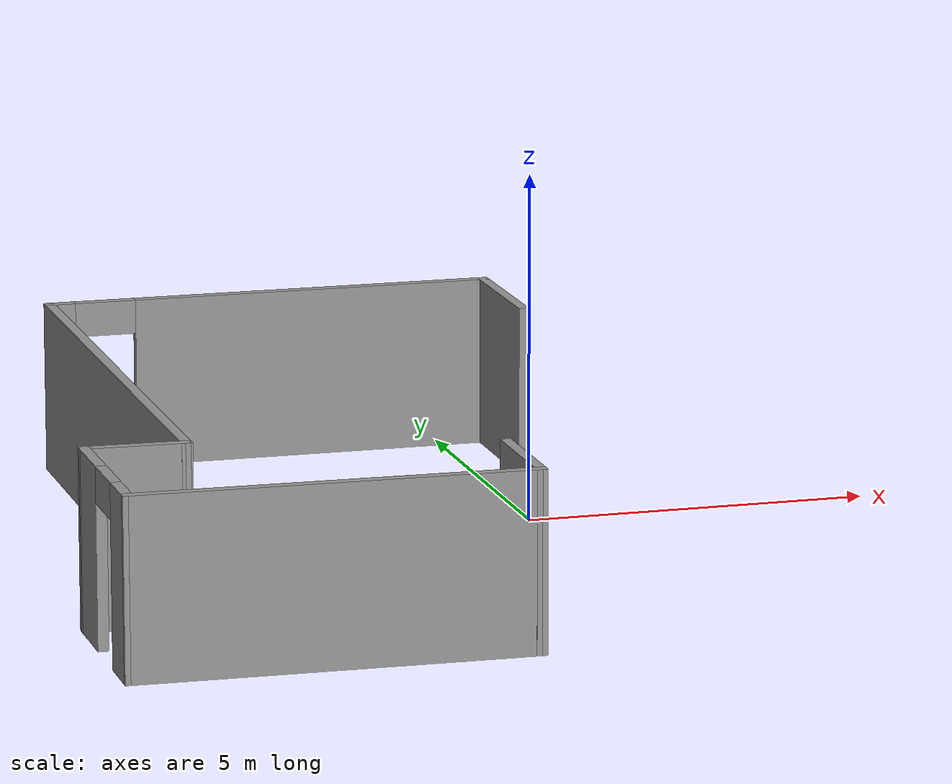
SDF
<?xml version='1.0'?>
<sdf version='1.7'>
  <model name='custom-flat.world'>
    <pose>-3.30064 -0.99572 0 0 -0 0</pose>
    <link name='Wall_10'>
      <collision name='Wall_10_Collision'>
        <geometry>
          <box>
            <size>9 0.15 2.5</size>
          </box>
        </geometry>
        <pose>0 0 1.25 0 -0 0</pose>
      </collision>
      <visual name='Wall_10_Visual'>
        <pose>0 0 1.25 0 -0 0</pose>
        <geometry>
          <box>
            <size>9 0.15 2.5</size>
          </box>
        </geometry>
        <material>
          <script>
            <uri>file://media/materials/scripts/gazebo.material</uri>
            <name>Gazebo/Grey</name>
          </script>
          <ambient>1 1 1 1</ambient>
        </material>
        <meta>
          <layer>0</layer>
        </meta>
      </visual>
      <pose>-2.61833 1.3326 0 0 -0 1.5708</pose>
    </link>
    <link name='Wall_12'>
      <pose>0.681675 5.7576 0 0 -0 0</pose>
      <visual name='Wall_12_Visual_0'>
        <pose>-3.15462 0 1.25 0 -0 0</pose>
        <geometry>
          <box>
            <size>0.440753 0.15 2.5</size>
          </box>
        </geometry>
        <material>
          <script>
            <uri>file://media/materials/scripts/gazebo.material</uri>
            <name>Gazebo/Grey</name>
          </script>
          <ambient>1 1 1 1</ambient>
        </material>
        <meta>
          <layer>0</layer>
        </meta>
      </visual>
      <collision name='Wall_12_Collision_0'>
        <geometry>
          <box>
            <size>0.440753 0.15 2.5</size>
          </box>
        </geometry>
        <pose>-3.15462 0 1.25 0 -0 0</pose>
      </collision>
      <visual name='Wall_12_Visual_1'>
        <pose>0.670377 0 1.25 0 -0 0</pose>
        <geometry>
          <box>
            <size>5.40925 0.15 2.5</size>
          </box>
        </geometry>
        <material>
          <script>
            <uri>file://media/materials/scripts/gazebo.material</uri>
            <name>Gazebo/Grey</name>
          </script>
          <ambient>1 1 1 1</ambient>
        </material>
        <meta>
          <layer>0</layer>
        </meta>
      </visual>
      <collision name='Wall_12_Collision_1'>
        <geometry>
          <box>
            <size>5.40925 0.15 2.5</size>
          </box>
        </geometry>
        <pose>0.670377 0 1.25 0 -0 0</pose>
      </collision>
      <visual name='Wall_12_Visual_2'>
        <pose>-2.48425 0 2.25 0 -0 0</pose>
        <geometry>
          <box>
            <size>0.9 0.15 0.5</size>
          </box>
        </geometry>
        <material>
          <script>
            <uri>file://media/materials/scripts/gazebo.material</uri>
            <name>Gazebo/Grey</name>
          </script>
          <ambient>1 1 1 1</ambient>
        </material>
        <meta>
          <layer>0</layer>
        </meta>
      </visual>
      <collision name='Wall_12_Collision_2'>
        <geometry>
          <box>
            <size>0.9 0.15 0.5</size>
          </box>
        </geometry>
        <pose>-2.48425 0 2.25 0 -0 0</pose>
      </collision>
    </link>
    <link name='Wall_13'>
      <collision name='Wall_13_Collision'>
        <geometry>
          <box>
            <size>2.25 0.15 2.5</size>
          </box>
        </geometry>
        <pose>0 0 1.25 0 -0 0</pose>
      </collision>
      <visual name='Wall_13_Visual'>
        <pose>0 0 1.25 0 -0 0</pose>
        <geometry>
          <box>
            <size>2.25 0.15 2.5</size>
          </box>
        </geometry>
        <material>
          <script>
            <uri>file://media/materials/scripts/gazebo.material</uri>
            <name>Gazebo/Grey</name>
          </script>
          <ambient>1 1 1 1</ambient>
        </material>
        <meta>
          <layer>0</layer>
        </meta>
      </visual>
      <pose>3.98168 4.7076 0 0 -0 -1.5708</pose>
    </link>
    <link name='Wall_3'>
      <collision name='Wall_3_Collision'>
        <geometry>
          <box>
            <size>5.60914 0.15 2.5</size>
          </box>
        </geometry>
        <pose>0 0 1.25 0 -0 0</pose>
      </collision>
      <visual name='Wall_3_Visual'>
        <pose>0 0 1.25 0 -0 0</pose>
        <geometry>
          <box>
            <size>5.60914 0.15 2.5</size>
          </box>
        </geometry>
        <material>
          <script>
            <uri>file://media/materials/scripts/gazebo.material</uri>
            <name>Gazebo/Grey</name>
          </script>
          <ambient>1 1 1 1</ambient>
        </material>
        <meta>
          <layer>0</layer>
        </meta>
      </visual>
      <pose>-1.25029 -5.70311 0 0 -0 -0.019433</pose>
    </link>
    <link name='Wall_5'>
      <collision name='Wall_5_Collision'>
        <geometry>
          <box>
            <size>1.75 0.15 2.5</size>
          </box>
        </geometry>
        <pose>0 0 1.25 0 -0 0</pose>
      </collision>
      <visual name='Wall_5_Visual'>
        <pose>0 0 1.25 0 -0 0</pose>
        <geometry>
          <box>
            <size>1.75 0.15 2.5</size>
          </box>
        </geometry>
        <material>
          <script>
            <uri>file://media/materials/scripts/gazebo.material</uri>
            <name>Gazebo/Grey</name>
          </script>
          <ambient>1 1 1 1</ambient>
        </material>
        <meta>
          <layer>0</layer>
        </meta>
      </visual>
      <pose>1.47877 -4.95615 0 0 -0 1.5708</pose>
    </link>
    <link name='Wall_7'>
      <pose>-3.97934 -4.35007 0 0 -0 1.5708</pose>
      <visual name='Wall_7_Visual_0'>
        <pose>-0.995061 0 1.25 0 -0 0</pose>
        <geometry>
          <box>
            <size>0.759877 0.15 2.5</size>
          </box>
        </geometry>
        <material>
          <script>
            <uri>file://media/materials/scripts/gazebo.material</uri>
            <name>Gazebo/Grey</name>
          </script>
          <ambient>1 1 1 1</ambient>
        </material>
        <meta>
          <layer>0</layer>
        </meta>
      </visual>
      <collision name='Wall_7_Collision_0'>
        <geometry>
          <box>
            <size>0.759877 0.15 2.5</size>
          </box>
        </geometry>
        <pose>-0.995061 0 1.25 0 -0 0</pose>
      </collision>
      <visual name='Wall_7_Visual_1'>
        <pose>0.829939 0 1.25 0 -0 0</pose>
        <geometry>
          <box>
            <size>1.09012 0.15 2.5</size>
          </box>
        </geometry>
        <material>
          <script>
            <uri>file://media/materials/scripts/gazebo.material</uri>
            <name>Gazebo/Grey</name>
          </script>
          <ambient>1 1 1 1</ambient>
        </material>
        <meta>
          <layer>0</layer>
        </meta>
      </visual>
      <collision name='Wall_7_Collision_1'>
        <geometry>
          <box>
            <size>1.09012 0.15 2.5</size>
          </box>
        </geometry>
        <pose>0.829939 0 1.25 0 -0 0</pose>
      </collision>
      <visual name='Wall_7_Visual_2'>
        <pose>-0.165123 0 2.25 0 -0 0</pose>
        <geometry>
          <box>
            <size>0.9 0.15 0.5</size>
          </box>
        </geometry>
        <material>
          <script>
            <uri>file://media/materials/scripts/gazebo.material</uri>
            <name>Gazebo/Grey</name>
          </script>
          <ambient>1 1 1 1</ambient>
        </material>
        <meta>
          <layer>0</layer>
        </meta>
      </visual>
      <collision name='Wall_7_Collision_2'>
        <geometry>
          <box>
            <size>0.9 0.15 0.5</size>
          </box>
        </geometry>
        <pose>-0.165123 0 2.25 0 -0 0</pose>
      </collision>
    </link>
    <link name='Wall_9'>
      <collision name='Wall_9_Collision'>
        <geometry>
          <box>
            <size>1.48855 0.15 2.5</size>
          </box>
        </geometry>
        <pose>0 0 1.25 0 -0 0</pose>
      </collision>
      <visual name='Wall_9_Visual'>
        <pose>0 0 1.25 0 -0 0</pose>
        <geometry>
          <box>
            <size>1.48855 0.15 2.5</size>
          </box>
        </geometry>
        <material>
          <script>
            <uri>file://media/materials/scripts/gazebo.material</uri>
            <name>Gazebo/Grey</name>
          </script>
          <ambient>1 1 1 1</ambient>
        </material>
        <meta>
          <layer>0</layer>
        </meta>
      </visual>
      <pose>-3.3104 -3.07124 0 0 -0 -0.03163</pose>
    </link>
    <static>1</static>
  </model>
</sdf>
